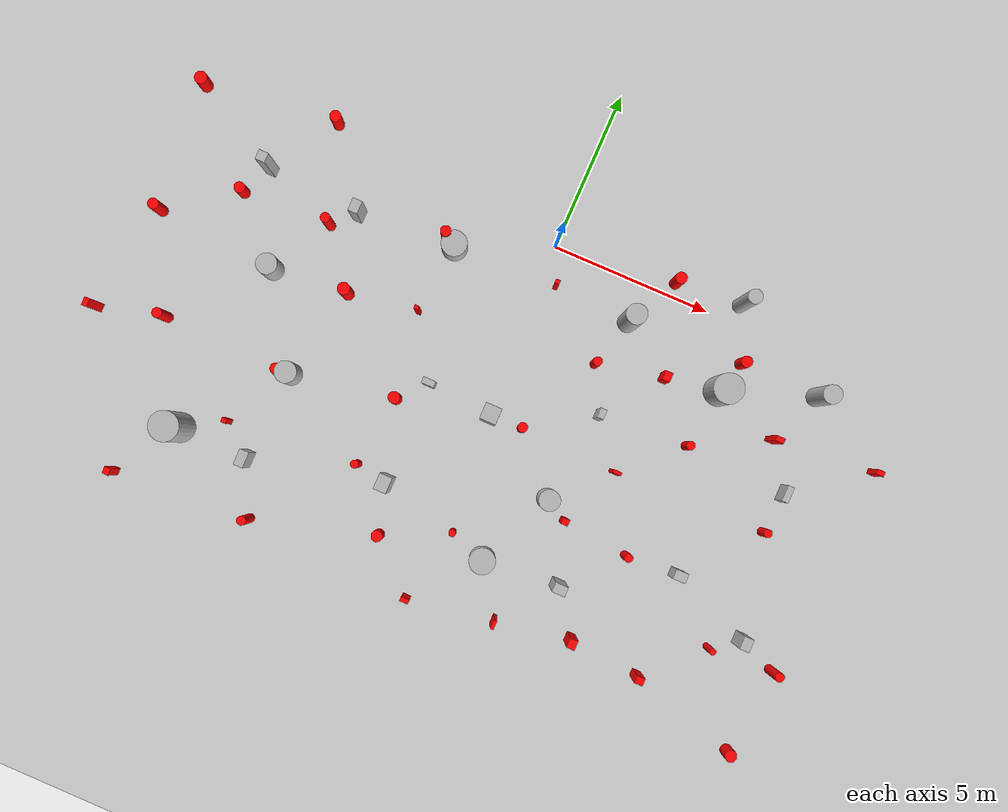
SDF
<sdf version="1.7">
 <world name="default">
  <model name="ground_plane">
   <static>1</static>
   <link name="link">
    <collision name="collision">
     <geometry><plane><normal>0 0 1</normal><size>100 100</size></plane></geometry>
     <surface>
      <contact><collide_bitmask>65535</collide_bitmask></contact>
      <friction><ode><mu>100</mu><mu2>50</mu2></ode></friction>
     </surface>
    </collision>
    <visual name="visual">
     <cast_shadows>0</cast_shadows>
     <geometry><plane><normal>0 0 1</normal><size>100 100</size></plane></geometry>
     <material>
      <script><uri>file://media/materials/scripts/gazebo.material</uri><name>Gazebo/Grey</name></script>
     </material>
    </visual>
   </link>
  </model>
  <model name="cylinder_1_0.6_0.6_2.9">
   <static>true</static>
   <pose>2.917882261333123 -1.2482557747461502 1.4636627605010293 0 0 0</pose>
   <link name="link">
    <visual name="visual">
     <geometry>
      <cylinder><radius>0.3150324556477333</radius><length>2.9273255210020586</length></cylinder>
     </geometry>
    </visual>
   </link>
  </model>
  <model name="cylinder_2_0.4_0.4_2.9">
   <static>true</static>
   <pose>5.834500761653292 0.5778983950580887 1.425596638292661 0 0 0</pose>
   <link name="link">
    <visual name="visual">
     <geometry>
      <cylinder><radius>0.2213108174593661</radius><length>2.851193276585322</length></cylinder>
     </geometry>
    </visual>
   </link>
  </model>
  <model name="cylinder_3_0.9_0.9_2.6">
   <static>true</static>
   <pose>-8.257414005969185 -9.595632051193485 1.2781567509498504 0 0 0</pose>
   <link name="link">
    <visual name="visual">
     <geometry>
      <cylinder><radius>0.46100364447404574</radius><length>2.5563135018997007</length></cylinder>
     </geometry>
    </visual>
   </link>
  </model>
  <model name="cylinder_5_0.6_0.6_2.0">
   <static>true</static>
   <pose>2.798420426550477 -7.132934251819072 1.0218483217500718 0 0 0</pose>
   <link name="link">
    <visual name="visual">
     <geometry>
      <cylinder><radius>0.3243985819971571</radius><length>2.0436966435001436</length></cylinder>
     </geometry>
    </visual>
   </link>
  </model>
  <model name="cylinder_8_0.8_0.8_1.1">
   <static>true</static>
   <pose>-2.80984198852428 -1.259360924013171 0.5602254716292698 0 0 0</pose>
   <link name="link">
    <visual name="visual">
     <geometry>
      <cylinder><radius>0.4000300146337003</radius><length>1.1204509432585397</length></cylinder>
     </geometry>
    </visual>
   </link>
  </model>
  <model name="cylinder_10_0.7_0.7_1.5">
   <static>true</static>
   <pose>-5.822464878103306 -6.773809642300074 0.7532916025397821 0 0 0</pose>
   <link name="link">
    <visual name="visual">
     <geometry>
      <cylinder><radius>0.3398932318568919</radius><length>1.5065832050795642</length></cylinder>
     </geometry>
    </visual>
   </link>
  </model>
  <model name="cylinder_13_0.6_0.6_1.6">
   <static>true</static>
   <pose>-7.596068775736622 -4.077196049557101 0.817983179393976 0 0 0</pose>
   <link name="link">
    <visual name="visual">
     <geometry><cylinder><radius>0.324278898354401</radius><length>1.635966358787952</length></cylinder></geometry>
    </visual>
   </link>
  </model>
  <model name="cylinder_16_0.8_0.8_1.0">
   <static>true</static>
   <pose>1.7302586962016626 -9.597849076250128 0.5046954761925471 0 0 0</pose>
   <link name="link">
    <visual name="visual">
     <geometry>
      <cylinder><radius>0.4033449610388691</radius><length>1.0093909523850941</length></cylinder>
     </geometry>
    </visual>
   </link>
  </model>
  <model name="cylinder_17_0.6_0.6_2.4">
   <static>true</static>
   <pose>9.054980230339702 -1.0574924276474533 1.1994792753175043 0 0 0</pose>
   <link name="link">
    <visual name="visual">
     <geometry>
      <cylinder><radius>0.2892310852565401</radius><length>2.3989585506350086</length></cylinder>
     </geometry>
    </visual>
   </link>
  </model>
  <model name="cylinder_18_0.9_0.9_2.2">
   <static>true</static>
   <pose>6.275956394049544 -2.0698851830603076 1.0812728726358587 0 0 0</pose>
   <link name="link">
    <visual name="visual">
     <geometry>
      <cylinder><radius>0.4645206085564558</radius><length>2.1625457452717174</length></cylinder>
     </geometry>
    </visual>
   </link>
  </model>
  <model name="box_0_0.2_0.3_1.9">
   <static>true</static>
   <pose>3.2034707498537003 -4.198447855791119 0.9287687009457661 0 0 0</pose>
   <link name="link">
    <visual name="visual"><geometry><box><size>0.2 0.3 1.9</size></box></geometry></visual>
   </link>
  </model>
  <model name="box_3_0.4_0.5_1.9">
   <static>true</static>
   <pose>-1.8563340554800067 -8.61666009089724 0.9535426826780689 0 0 0</pose>
   <link name="link">
    <visual name="visual"><geometry><box><size>0.4 0.5 1.9</size></box></geometry></visual>
   </link>
  </model>
  <model name="box_4_0.3_0.5_1.4">
   <static>true</static>
   <pose>-6.000069502071998 -9.62956411078772 0.7239246880603801 0 0 0</pose>
   <link name="link">
    <visual name="visual"><geometry><box><size>0.3 0.5 1.4</size></box></geometry></visual>
   </link>
  </model>
  <model name="box_5_0.4_0.3_2.2">
   <static>true</static>
   <pose>4.088288038470655 -9.363221409373843 1.1214784014997634 0 0 0</pose>
   <link name="link">
    <visual name="visual"><geometry><box><size>0.4 0.3 2.2</size></box></geometry></visual>
   </link>
  </model>
  <model name="box_7_0.3_0.3_2.4">
   <static>true</static>
   <pose>-8.839416793522489 -1.3116674888375854 1.1963434888154594 0 0 0</pose>
   <link name="link">
    <visual name="visual"><geometry><box><size>0.3 0.3 2.4</size></box></geometry></visual>
   </link>
  </model>
  <model name="box_9_0.3_0.4_1.9">
   <static>true</static>
   <pose>-5.850598491177812 -1.5062906249698749 0.9635754243648107 0 0 0</pose>
   <link name="link">
    <visual name="visual"><geometry><box><size>0.3 0.4 1.9</size></box></geometry></visual>
   </link>
  </model>
  <model name="box_10_0.4_0.3_1.3">
   <static>true</static>
   <pose>7.277112118464629 -7.649362880759338 0.6320681063451533 0 0 0</pose>
   <link name="link">
    <visual name="visual"><geometry><box><size>0.4 0.3 1.3</size></box></geometry></visual>
   </link>
  </model>
  <model name="box_11_0.2_0.5_1.2">
   <static>true</static>
   <pose>9.23872757094458 -4.157049464149023 0.6002939422654978 0 0 0</pose>
   <link name="link">
    <visual name="visual"><geometry><box><size>0.2 0.5 1.2</size></box></geometry></visual>
   </link>
  </model>
  <model name="box_13_0.5_0.5_2.7">
   <static>true</static>
   <pose>0.22637965092912005 -5.513659420505215 1.3621915174216834 0 0 0</pose>
   <link name="link">
    <visual name="visual"><geometry><box><size>0.5 0.5 2.7</size></box></geometry></visual>
   </link>
  </model>
  <model name="box_14_0.4_0.2_1.1">
   <static>true</static>
   <pose>-1.8551765717238524 -5.355317156581146 0.5534271817868253 0 0 0</pose>
   <link name="link">
    <visual name="visual"><geometry><box><size>0.4 0.2 1.1</size></box></geometry></visual>
   </link>
  </model>
  <model name="box_19_0.3_0.4_1.6">
   <static>true</static>
   <pose>9.78819554568863 -8.693915856964395 0.7883984973314939 0 0 0</pose>
   <link name="link">
    <visual name="visual"><geometry><box><size>0.3 0.4 1.6</size></box></geometry></visual>
   </link>
  </model>
  <model name="dynamic_cylinder_3_0.3_0.3_1.1">
   <static>true</static>
   <pose>9.16128509601215 -5.4615145088169 0.5687412396190572 0 0 0</pose>
   <link name="link">
    <visual name="visual">
     <geometry>
      <cylinder><radius>0.13044684073773197</radius><length>1.1374824792381144</length></cylinder>
     </geometry>
     <material><ambient>1 0 0 1</ambient><diffuse>1 0 0 1</diffuse><specular>0.5 0.5 0.5 1</specular></material>
    </visual>
   </link>
   <plugin name="obstacle_motion" filename="libobstaclePathPlugin.so">
    <orientation>false</orientation>
    <loop>0</loop>
    <velocity>0.38985832973754764</velocity>
    <path>
     <waypoint>9.16128509601215 -5.4615145088169 0.5687412396190572</waypoint>
     <waypoint>-3.0168916002980133 5.970918180963196 0.5687412396190572</waypoint>
    </path>
   </plugin>
  </model>
  <model name="dynamic_cylinder_5_0.3_0.3_1.5">
   <static>true</static>
   <pose>2.498827296501169 -2.812606580211501 0.7368921675047347 0 0 0</pose>
   <link name="link">
    <visual name="visual">
     <geometry>
      <cylinder><radius>0.14067333458357484</radius><length>1.4737843350094695</length></cylinder>
     </geometry>
     <material><ambient>1 0 0 1</ambient><diffuse>1 0 0 1</diffuse><specular>0.5 0.5 0.5 1</specular></material>
    </visual>
   </link>
   <plugin name="obstacle_motion" filename="libobstaclePathPlugin.so">
    <orientation>false</orientation>
    <loop>0</loop>
    <velocity>0.47935223164488194</velocity>
    <path>
     <waypoint>2.498827296501169 -2.812606580211501 0.7368921675047347</waypoint>
     <waypoint>11.227072123164046 1.125237640066132 0.7368921675047347</waypoint>
    </path>
   </plugin>
  </model>
  <model name="dynamic_cylinder_6_0.3_0.3_1.2">
   <static>true</static>
   <pose>1.2498786406072995 -5.480333577452499 0.6241523303919245 0 0 0</pose>
   <link name="link">
    <visual name="visual">
     <geometry>
      <cylinder><radius>0.15249704422542643</radius><length>1.248304660783849</length></cylinder>
     </geometry>
     <material><ambient>1 0 0 1</ambient><diffuse>1 0 0 1</diffuse><specular>0.5 0.5 0.5 1</specular></material>
    </visual>
   </link>
   <plugin name="obstacle_motion" filename="libobstaclePathPlugin.so">
    <orientation>false</orientation>
    <loop>0</loop>
    <velocity>0.3746069727761495</velocity>
    <path>
     <waypoint>1.2498786406072995 -5.480333577452499 0.6241523303919245</waypoint>
     <waypoint>-2.3588751508896326 -6.0380768380086955 0.6241523303919245</waypoint>
    </path>
   </plugin>
  </model>
  <model name="dynamic_cylinder_7_0.3_0.3_1.4">
   <static>true</static>
   <pose>6.014280550295702 -3.995820821009392 0.6784542050636808 0 0 0</pose>
   <link name="link">
    <visual name="visual">
     <geometry>
      <cylinder><radius>0.1348475989033497</radius><length>1.3569084101273616</length></cylinder>
     </geometry>
     <material><ambient>1 0 0 1</ambient><diffuse>1 0 0 1</diffuse><specular>0.5 0.5 0.5 1</specular></material>
    </visual>
   </link>
   <plugin name="obstacle_motion" filename="libobstaclePathPlugin.so">
    <orientation>false</orientation>
    <loop>0</loop>
    <velocity>0.3209255777484948</velocity>
    <path>
     <waypoint>6.014280550295702 -3.995820821009392 0.6784542050636808</waypoint>
     <waypoint>8.695645124061656 -10.831432896587316 0.6784542050636808</waypoint>
    </path>
   </plugin>
  </model>
  <model name="dynamic_cylinder_9_0.3_0.3_1.7">
   <static>true</static>
   <pose>-5.215208377307121 -11.274353807856418 0.8688445847068773 0 0 0</pose>
   <link name="link">
    <visual name="visual">
     <geometry>
      <cylinder><radius>0.14059423219682837</radius><length>1.7376891694137546</length></cylinder>
     </geometry>
     <material><ambient>1 0 0 1</ambient><diffuse>1 0 0 1</diffuse><specular>0.5 0.5 0.5 1</specular></material>
    </visual>
   </link>
   <plugin name="obstacle_motion" filename="libobstaclePathPlugin.so">
    <orientation>false</orientation>
    <loop>0</loop>
    <velocity>0.31789890900658</velocity>
    <path>
     <waypoint>-5.215208377307121 -11.274353807856418 0.8688445847068773</waypoint>
     <waypoint>-11.81078151579743 -3.0557023242961066 0.8688445847068773</waypoint>
    </path>
   </plugin>
  </model>
  <model name="dynamic_cylinder_10_0.3_0.3_1.5">
   <static>true</static>
   <pose>-11.416483206956213 -3.7773363758018323 0.7308560976081367 0 0 0</pose>
   <link name="link">
    <visual name="visual">
     <geometry>
      <cylinder><radius>0.16719571405958222</radius><length>1.4617121952162735</length></cylinder>
     </geometry>
     <material><ambient>1 0 0 1</ambient><diffuse>1 0 0 1</diffuse><specular>0.5 0.5 0.5 1</specular></material>
    </visual>
   </link>
   <plugin name="obstacle_motion" filename="libobstaclePathPlugin.so">
    <orientation>false</orientation>
    <loop>0</loop>
    <velocity>0.4390540011809372</velocity>
    <path>
     <waypoint>-11.416483206956213 -3.7773363758018323 0.7308560976081367</waypoint>
     <waypoint>-5.302369242513639 -6.966001208264758 0.7308560976081367</waypoint>
    </path>
   </plugin>
  </model>
  <model name="dynamic_cylinder_11_0.4_0.4_1.0">
   <static>true</static>
   <pose>10.772664497292176 -11.935122866555936 0.5067486693480159 0 0 0</pose>
   <link name="link">
    <visual name="visual">
     <geometry>
      <cylinder><radius>0.18136786497018637</radius><length>1.0134973386960318</length></cylinder>
     </geometry>
     <material><ambient>1 0 0 1</ambient><diffuse>1 0 0 1</diffuse><specular>0.5 0.5 0.5 1</specular></material>
    </visual>
   </link>
   <plugin name="obstacle_motion" filename="libobstaclePathPlugin.so">
    <orientation>false</orientation>
    <loop>0</loop>
    <velocity>0.43929648614029004</velocity>
    <path>
     <waypoint>10.772664497292176 -11.935122866555936 0.5067486693480159</waypoint>
     <waypoint>2.4094136903433494 2.1297506392869163 0.5067486693480159</waypoint>
    </path>
   </plugin>
  </model>
  <model name="dynamic_cylinder_12_0.3_0.3_1.8">
   <static>true</static>
   <pose>-6.533771963091337 -2.152762495436985 0.892232053114913 0 0 0</pose>
   <link name="link">
    <visual name="visual">
     <geometry>
      <cylinder><radius>0.15027207611453242</radius><length>1.784464106229826</length></cylinder>
     </geometry>
     <material><ambient>1 0 0 1</ambient><diffuse>1 0 0 1</diffuse><specular>0.5 0.5 0.5 1</specular></material>
    </visual>
   </link>
   <plugin name="obstacle_motion" filename="libobstaclePathPlugin.so">
    <orientation>false</orientation>
    <loop>0</loop>
    <velocity>0.4743571469510986</velocity>
    <path>
     <waypoint>-6.533771963091337 -2.152762495436985 0.892232053114913</waypoint>
     <waypoint>9.28705874921802 2.8518280377930356 0.892232053114913</waypoint>
    </path>
   </plugin>
  </model>
  <model name="dynamic_cylinder_14_0.3_0.3_1.0">
   <static>true</static>
   <pose>-1.4336699320921973 -10.16431754327315 0.524431414826715 0 0 0</pose>
   <link name="link">
    <visual name="visual">
     <geometry><cylinder><radius>0.1739883917829101</radius><length>1.04886282965343</length></cylinder></geometry>
     <material><ambient>1 0 0 1</ambient><diffuse>1 0 0 1</diffuse><specular>0.5 0.5 0.5 1</specular></material>
    </visual>
   </link>
   <plugin name="obstacle_motion" filename="libobstaclePathPlugin.so">
    <orientation>false</orientation>
    <loop>0</loop>
    <velocity>0.4815465914970079</velocity>
    <path>
     <waypoint>-1.4336699320921973 -10.16431754327315 0.524431414826715</waypoint>
     <waypoint>-6.062429867060311 -11.049227458091575 0.524431414826715</waypoint>
    </path>
   </plugin>
  </model>
  <model name="dynamic_cylinder_16_0.3_0.3_1.2">
   <static>true</static>
   <pose>-7.808198750519861 -4.128287978206088 0.6135999907048404 0 0 0</pose>
   <link name="link">
    <visual name="visual">
     <geometry>
      <cylinder><radius>0.15145127432987568</radius><length>1.2271999814096808</length></cylinder>
     </geometry>
     <material><ambient>1 0 0 1</ambient><diffuse>1 0 0 1</diffuse><specular>0.5 0.5 0.5 1</specular></material>
    </visual>
   </link>
   <plugin name="obstacle_motion" filename="libobstaclePathPlugin.so">
    <orientation>false</orientation>
    <loop>0</loop>
    <velocity>0.3476826561848116</velocity>
    <path>
     <waypoint>-7.808198750519861 -4.128287978206088 0.6135999907048404</waypoint>
     <waypoint>-10.483017159872865 2.573984976276984 0.6135999907048404</waypoint>
    </path>
   </plugin>
  </model>
  <model name="dynamic_cylinder_17_0.3_0.3_1.3">
   <static>true</static>
   <pose>-3.169738067111009 -1.0435226096962715 0.6373566915163664 0 0 0</pose>
   <link name="link">
    <visual name="visual">
     <geometry>
      <cylinder><radius>0.16591764718500285</radius><length>1.2747133830327328</length></cylinder>
     </geometry>
     <material><ambient>1 0 0 1</ambient><diffuse>1 0 0 1</diffuse><specular>0.5 0.5 0.5 1</specular></material>
    </visual>
   </link>
   <plugin name="obstacle_motion" filename="libobstaclePathPlugin.so">
    <orientation>false</orientation>
    <loop>0</loop>
    <velocity>0.41820538017409825</velocity>
    <path>
     <waypoint>-3.169738067111009 -1.0435226096962715 0.6373566915163664</waypoint>
     <waypoint>11.291848646303464 -8.797453638105504 0.6373566915163664</waypoint>
    </path>
   </plugin>
  </model>
  <model name="dynamic_cylinder_19_0.3_0.3_1.7">
   <static>true</static>
   <pose>11.00978215335823 -9.184308470764535 0.8743328320867154 0 0 0</pose>
   <link name="link">
    <visual name="visual">
     <geometry>
      <cylinder><radius>0.1399801692224526</radius><length>1.7486656641734308</length></cylinder>
     </geometry>
     <material><ambient>1 0 0 1</ambient><diffuse>1 0 0 1</diffuse><specular>0.5 0.5 0.5 1</specular></material>
    </visual>
   </link>
   <plugin name="obstacle_motion" filename="libobstaclePathPlugin.so">
    <orientation>false</orientation>
    <loop>0</loop>
    <velocity>0.4966852484521284</velocity>
    <path>
     <waypoint>11.00978215335823 -9.184308470764535 0.8743328320867154</waypoint>
     <waypoint>2.152673352325218 5.889553774735031 0.8743328320867154</waypoint>
    </path>
   </plugin>
  </model>
  <model name="dynamic_cylinder_20_0.2_0.2_1.4">
   <static>true</static>
   <pose>-2.871955595338246 -8.452591759265463 0.6991107631301368 0 0 0</pose>
   <link name="link">
    <visual name="visual">
     <geometry>
      <cylinder><radius>0.12415570400399184</radius><length>1.3982215262602735</length></cylinder>
     </geometry>
     <material><ambient>1 0 0 1</ambient><diffuse>1 0 0 1</diffuse><specular>0.5 0.5 0.5 1</specular></material>
    </visual>
   </link>
   <plugin name="obstacle_motion" filename="libobstaclePathPlugin.so">
    <orientation>false</orientation>
    <loop>0</loop>
    <velocity>0.4162163859344126</velocity>
    <path>
     <waypoint>-2.871955595338246 -8.452591759265463 0.6991107631301368</waypoint>
     <waypoint>3.7622870025800896 8.689502300428973 0.6991107631301368</waypoint>
    </path>
   </plugin>
  </model>
  <model name="dynamic_cylinder_22_0.3_0.3_1.1">
   <static>true</static>
   <pose>-9.348549336198126 -2.279145280873202 0.5439137832250003 0 0 0</pose>
   <link name="link">
    <visual name="visual">
     <geometry>
      <cylinder><radius>0.1703217496467216</radius><length>1.0878275664500006</length></cylinder>
     </geometry>
     <material><ambient>1 0 0 1</ambient><diffuse>1 0 0 1</diffuse><specular>0.5 0.5 0.5 1</specular></material>
    </visual>
   </link>
   <plugin name="obstacle_motion" filename="libobstaclePathPlugin.so">
    <orientation>false</orientation>
    <loop>0</loop>
    <velocity>0.421261626609017</velocity>
    <path>
     <waypoint>-9.348549336198126 -2.279145280873202 0.5439137832250003</waypoint>
     <waypoint>-4.294968238962794 -11.281192202286014 0.5439137832250003</waypoint>
    </path>
   </plugin>
  </model>
  <model name="dynamic_cylinder_23_0.3_0.3_1.7">
   <static>true</static>
   <pose>-9.95253784515112 -6.686485288973467 0.8425104718491128 0 0 0</pose>
   <link name="link">
    <visual name="visual">
     <geometry>
      <cylinder><radius>0.15596824058234482</radius><length>1.6850209436982255</length></cylinder>
     </geometry>
     <material><ambient>1 0 0 1</ambient><diffuse>1 0 0 1</diffuse><specular>0.5 0.5 0.5 1</specular></material>
    </visual>
   </link>
   <plugin name="obstacle_motion" filename="libobstaclePathPlugin.so">
    <orientation>false</orientation>
    <loop>0</loop>
    <velocity>0.3324240521417666</velocity>
    <path>
     <waypoint>-9.95253784515112 -6.686485288973467 0.8425104718491128</waypoint>
     <waypoint>-5.639047239252431 -10.412412909193087 0.8425104718491128</waypoint>
    </path>
   </plugin>
  </model>
  <model name="dynamic_cylinder_24_0.4_0.4_1.3">
   <static>true</static>
   <pose>6.562933066776733 -1.0461704318624 0.6397761168194139 0 0 0</pose>
   <link name="link">
    <visual name="visual">
     <geometry>
      <cylinder><radius>0.17510216488563984</radius><length>1.2795522336388279</length></cylinder>
     </geometry>
     <material><ambient>1 0 0 1</ambient><diffuse>1 0 0 1</diffuse><specular>0.5 0.5 0.5 1</specular></material>
    </visual>
   </link>
   <plugin name="obstacle_motion" filename="libobstaclePathPlugin.so">
    <orientation>false</orientation>
    <loop>0</loop>
    <velocity>0.45629592004693226</velocity>
    <path>
     <waypoint>6.562933066776733 -1.0461704318624 0.6397761168194139</waypoint>
     <waypoint>-7.209692589117256 -1.6083790492516634 0.6397761168194139</waypoint>
    </path>
   </plugin>
  </model>
  <model name="dynamic_cylinder_25_0.2_0.2_1.1">
   <static>true</static>
   <pose>0.5851154658532796 -9.182872939906627 0.5714319872230625 0 0 0</pose>
   <link name="link">
    <visual name="visual">
     <geometry>
      <cylinder><radius>0.10813695988533054</radius><length>1.142863974446125</length></cylinder>
     </geometry>
     <material><ambient>1 0 0 1</ambient><diffuse>1 0 0 1</diffuse><specular>0.5 0.5 0.5 1</specular></material>
    </visual>
   </link>
   <plugin name="obstacle_motion" filename="libobstaclePathPlugin.so">
    <orientation>false</orientation>
    <loop>0</loop>
    <velocity>0.42257335062339846</velocity>
    <path>
     <waypoint>0.5851154658532796 -9.182872939906627 0.5714319872230625</waypoint>
     <waypoint>-10.87664748690747 11.297554626495188 0.5714319872230625</waypoint>
    </path>
   </plugin>
  </model>
  <model name="dynamic_cylinder_27_0.4_0.4_1.4">
   <static>true</static>
   <pose>-6.122652493917614 -6.805025737338965 0.6975831335948894 0 0 0</pose>
   <link name="link">
    <visual name="visual">
     <geometry>
      <cylinder><radius>0.18442349615530243</radius><length>1.3951662671897789</length></cylinder>
     </geometry>
     <material><ambient>1 0 0 1</ambient><diffuse>1 0 0 1</diffuse><specular>0.5 0.5 0.5 1</specular></material>
    </visual>
   </link>
   <plugin name="obstacle_motion" filename="libobstaclePathPlugin.so">
    <orientation>false</orientation>
    <loop>0</loop>
    <velocity>0.4556343190900508</velocity>
    <path>
     <waypoint>-6.122652493917614 -6.805025737338965 0.6975831335948894</waypoint>
     <waypoint>10.146158645408768 -4.942160102804014 0.6975831335948894</waypoint>
    </path>
   </plugin>
  </model>
  <model name="dynamic_cylinder_28_0.4_0.4_1.3">
   <static>true</static>
   <pose>-2.596873474448021 -6.187713740973949 0.663321163335898 0 0 0</pose>
   <link name="link">
    <visual name="visual">
     <geometry>
      <cylinder><radius>0.18093649714891985</radius><length>1.326642326671796</length></cylinder>
     </geometry>
     <material><ambient>1 0 0 1</ambient><diffuse>1 0 0 1</diffuse><specular>0.5 0.5 0.5 1</specular></material>
    </visual>
   </link>
   <plugin name="obstacle_motion" filename="libobstaclePathPlugin.so">
    <orientation>false</orientation>
    <loop>0</loop>
    <velocity>0.37548131451777744</velocity>
    <path>
     <waypoint>-2.596873474448021 -6.187713740973949 0.663321163335898</waypoint>
     <waypoint>-0.3985551551425921 -11.040172754382793 0.663321163335898</waypoint>
    </path>
   </plugin>
  </model>
  <model name="dynamic_cylinder_29_0.2_0.2_1.4">
   <static>true</static>
   <pose>8.985598009796217 -9.30174438690453 0.7107629796208721 0 0 0</pose>
   <link name="link">
    <visual name="visual">
     <geometry>
      <cylinder><radius>0.10005459648969957</radius><length>1.4215259592417442</length></cylinder>
     </geometry>
     <material><ambient>1 0 0 1</ambient><diffuse>1 0 0 1</diffuse><specular>0.5 0.5 0.5 1</specular></material>
    </visual>
   </link>
   <plugin name="obstacle_motion" filename="libobstaclePathPlugin.so">
    <orientation>false</orientation>
    <loop>0</loop>
    <velocity>0.3975352647076415</velocity>
    <path>
     <waypoint>8.985598009796217 -9.30174438690453 0.7107629796208721</waypoint>
     <waypoint>-7.607200990081893 -2.3273759422970723 0.7107629796208721</waypoint>
    </path>
   </plugin>
  </model>
  <model name="dynamic_cylinder_30_0.4_0.4_1.7">
   <static>true</static>
   <pose>-5.2119155477740104 -3.84885494001122 0.8494227309163086 0 0 0</pose>
   <link name="link">
    <visual name="visual">
     <geometry>
      <cylinder><radius>0.18989610922270317</radius><length>1.6988454618326172</length></cylinder>
     </geometry>
     <material><ambient>1 0 0 1</ambient><diffuse>1 0 0 1</diffuse><specular>0.5 0.5 0.5 1</specular></material>
    </visual>
   </link>
   <plugin name="obstacle_motion" filename="libobstaclePathPlugin.so">
    <orientation>false</orientation>
    <loop>0</loop>
    <velocity>0.3983784463416689</velocity>
    <path>
     <waypoint>-5.2119155477740104 -3.84885494001122 0.8494227309163086</waypoint>
     <waypoint>11.116735086249122 -8.452767982430629 0.8494227309163086</waypoint>
    </path>
   </plugin>
  </model>
  <model name="dynamic_cylinder_31_0.3_0.3_1.3">
   <static>true</static>
   <pose>-7.54757045944377 0.7840460993126577 0.6429387518711818 0 0 0</pose>
   <link name="link">
    <visual name="visual">
     <geometry>
      <cylinder><radius>0.1731744185432893</radius><length>1.2858775037423635</length></cylinder>
     </geometry>
     <material><ambient>1 0 0 1</ambient><diffuse>1 0 0 1</diffuse><specular>0.5 0.5 0.5 1</specular></material>
    </visual>
   </link>
   <plugin name="obstacle_motion" filename="libobstaclePathPlugin.so">
    <orientation>false</orientation>
    <loop>0</loop>
    <velocity>0.48299415406312374</velocity>
    <path>
     <waypoint>-7.54757045944377 0.7840460993126577 0.6429387518711818</waypoint>
     <waypoint>-4.402978562580575 -1.2749528652912208 0.6429387518711818</waypoint>
    </path>
   </plugin>
  </model>
  <model name="dynamic_cylinder_32_0.4_0.4_1.6">
   <static>true</static>
   <pose>3.7756539988114035 0.41582600438592365 0.7902294136405958 0 0 0</pose>
   <link name="link">
    <visual name="visual">
     <geometry>
      <cylinder><radius>0.17731100525054194</radius><length>1.5804588272811917</length></cylinder>
     </geometry>
     <material><ambient>1 0 0 1</ambient><diffuse>1 0 0 1</diffuse><specular>0.5 0.5 0.5 1</specular></material>
    </visual>
   </link>
   <plugin name="obstacle_motion" filename="libobstaclePathPlugin.so">
    <orientation>false</orientation>
    <loop>0</loop>
    <velocity>0.30771144921179966</velocity>
    <path>
     <waypoint>3.7756539988114035 0.41582600438592365 0.7902294136405958</waypoint>
     <waypoint>9.627892095579877 1.3114814068862302 0.7902294136405958</waypoint>
    </path>
   </plugin>
  </model>
  <model name="dynamic_cylinder_34_0.3_0.3_1.4">
   <static>true</static>
   <pose>5.635530591133467 -7.764014666662557 0.7139632793532805 0 0 0</pose>
   <link name="link">
    <visual name="visual">
     <geometry>
      <cylinder><radius>0.13041735573892466</radius><length>1.427926558706561</length></cylinder>
     </geometry>
     <material><ambient>1 0 0 1</ambient><diffuse>1 0 0 1</diffuse><specular>0.5 0.5 0.5 1</specular></material>
    </visual>
   </link>
   <plugin name="obstacle_motion" filename="libobstaclePathPlugin.so">
    <orientation>false</orientation>
    <loop>0</loop>
    <velocity>0.3580496085119857</velocity>
    <path>
     <waypoint>5.635530591133467 -7.764014666662557 0.7139632793532805</waypoint>
     <waypoint>0.15149337656132644 11.995405874807169 0.7139632793532805</waypoint>
    </path>
   </plugin>
  </model>
  <model name="dynamic_cylinder_39_0.4_0.4_1.1">
   <static>true</static>
   <pose>-11.727476915707378 0.2693229017684793 0.5608108908838279 0 0 0</pose>
   <link name="link">
    <visual name="visual">
     <geometry>
      <cylinder><radius>0.19416677953897565</radius><length>1.1216217817676557</length></cylinder>
     </geometry>
     <material><ambient>1 0 0 1</ambient><diffuse>1 0 0 1</diffuse><specular>0.5 0.5 0.5 1</specular></material>
    </visual>
   </link>
   <plugin name="obstacle_motion" filename="libobstaclePathPlugin.so">
    <orientation>false</orientation>
    <loop>0</loop>
    <velocity>0.3001328437180409</velocity>
    <path>
     <waypoint>-11.727476915707378 0.2693229017684793 0.5608108908838279</waypoint>
     <waypoint>-10.774188475937837 11.17239933929936 0.5608108908838279</waypoint>
    </path>
   </plugin>
  </model>
  <model name="dynamic_box_1_0.2_0.3_1.8">
   <static>true</static>
   <pose>-11.95044874621388 -7.226127967995369 0.9747410708006319 0 0 0</pose>
   <link name="link">
    <visual name="visual">
     <geometry><box><size>0.16593023151628253 0.25835228423607415 1.7582575096892716</size></box></geometry>
     <material><ambient>1 0 0 1</ambient><diffuse>1 0 0 1</diffuse><specular>0.5 0.5 0.5 1</specular></material>
    </visual>
   </link>
   <plugin name="obstacle_motion" filename="libobstaclePathPlugin.so">
    <orientation>false</orientation>
    <loop>0</loop>
    <velocity>0.4457117459898974</velocity>
    <path>
     <waypoint>-11.95044874621388 -7.226127967995369 0.9747410708006319</waypoint>
     <waypoint>-4.069426257531747 3.321362538646765 0.9072147043078601</waypoint>
    </path>
   </plugin>
  </model>
  <model name="dynamic_box_2_0.2_0.2_1.2">
   <static>true</static>
   <pose>-9.514116877239069 -11.565687403164596 0.6787199957223198 0 0 0</pose>
   <link name="link">
    <visual name="visual">
     <geometry><box><size>0.19725441726586296 0.21763029208705986 1.239322915635053</size></box></geometry>
     <material><ambient>1 0 0 1</ambient><diffuse>1 0 0 1</diffuse><specular>0.5 0.5 0.5 1</specular></material>
    </visual>
   </link>
   <plugin name="obstacle_motion" filename="libobstaclePathPlugin.so">
    <orientation>false</orientation>
    <loop>0</loop>
    <velocity>0.37768082343382103</velocity>
    <path>
     <waypoint>-9.514116877239069 -11.565687403164596 0.6787199957223198</waypoint>
     <waypoint>-1.547243027257597 7.168541973213664 0.7120070116379371</waypoint>
    </path>
   </plugin>
  </model>
  <model name="dynamic_box_6_0.3_0.2_1.8">
   <static>true</static>
   <pose>8.283698087897289 -2.8136587381734834 0.9009054142079997 0 0 0</pose>
   <link name="link">
    <visual name="visual">
     <geometry><box><size>0.27342290831873256 0.1588532328259378 1.7968570168081497</size></box></geometry>
     <material><ambient>1 0 0 1</ambient><diffuse>1 0 0 1</diffuse><specular>0.5 0.5 0.5 1</specular></material>
    </visual>
   </link>
   <plugin name="obstacle_motion" filename="libobstaclePathPlugin.so">
    <orientation>false</orientation>
    <loop>0</loop>
    <velocity>0.3200466874848246</velocity>
    <path>
     <waypoint>8.283698087897289 -2.8136587381734834 0.9009054142079997</waypoint>
     <waypoint>7.944746735889076 3.852868251468964 0.9136649567692058</waypoint>
    </path>
   </plugin>
  </model>
  <model name="dynamic_box_7_0.3_0.3_1.7">
   <static>true</static>
   <pose>5.084890821439728 -10.710394863510352 0.8928533133938285 0 0 0</pose>
   <link name="link">
    <visual name="visual">
     <geometry><box><size>0.2549495228384997 0.2988466166441524 1.7064620778553081</size></box></geometry>
     <material><ambient>1 0 0 1</ambient><diffuse>1 0 0 1</diffuse><specular>0.5 0.5 0.5 1</specular></material>
    </visual>
   </link>
   <plugin name="obstacle_motion" filename="libobstaclePathPlugin.so">
    <orientation>false</orientation>
    <loop>0</loop>
    <velocity>0.4933150213848328</velocity>
    <path>
     <waypoint>5.084890821439728 -10.710394863510352 0.8928533133938285</waypoint>
     <waypoint>-7.981540332971059 7.725693801788857 0.9232839012094404</waypoint>
    </path>
   </plugin>
  </model>
  <model name="dynamic_box_8_0.1_0.3_1.8">
   <static>true</static>
   <pose>2.754477267463173 -11.108889506605252 0.8857501630441007 0 0 0</pose>
   <link name="link">
    <visual name="visual">
     <geometry><box><size>0.10891422219753283 0.28265671927340674 1.7686500230581423</size></box></geometry>
     <material><ambient>1 0 0 1</ambient><diffuse>1 0 0 1</diffuse><specular>0.5 0.5 0.5 1</specular></material>
    </visual>
   </link>
   <plugin name="obstacle_motion" filename="libobstaclePathPlugin.so">
    <orientation>false</orientation>
    <loop>0</loop>
    <velocity>0.31302429370976365</velocity>
    <path>
     <waypoint>2.754477267463173 -11.108889506605252 0.8857501630441007</waypoint>
     <waypoint>-3.789506995109072 7.763321257620891 0.9709384821615443</waypoint>
    </path>
   </plugin>
  </model>
  <model name="dynamic_box_12_0.2_0.2_1.1">
   <static>true</static>
   <pose>-6.963348627116593 -8.82466380352649 0.5729930844787706 0 0 0</pose>
   <link name="link">
    <visual name="visual">
     <geometry><box><size>0.15975006217038817 0.1510127570633279 1.10733891046263</size></box></geometry>
     <material><ambient>1 0 0 1</ambient><diffuse>1 0 0 1</diffuse><specular>0.5 0.5 0.5 1</specular></material>
    </visual>
   </link>
   <plugin name="obstacle_motion" filename="libobstaclePathPlugin.so">
    <orientation>false</orientation>
    <loop>0</loop>
    <velocity>0.3633082241916268</velocity>
    <path>
     <waypoint>-6.963348627116593 -8.82466380352649 0.5729930844787706</waypoint>
     <waypoint>4.4512115019148055 -10.812006137734375 0.5638549167561367</waypoint>
    </path>
   </plugin>
  </model>
  <model name="dynamic_box_16_0.1_0.1_1.8">
   <static>true</static>
   <pose>-3.01406438688624 -3.508343218256618 0.9311367277305754 0 0 0</pose>
   <link name="link">
    <visual name="visual">
     <geometry><box><size>0.1387246580804993 0.1224499985174772 1.7866198920401244</size></box></geometry>
     <material><ambient>1 0 0 1</ambient><diffuse>1 0 0 1</diffuse><specular>0.5 0.5 0.5 1</specular></material>
    </visual>
   </link>
   <plugin name="obstacle_motion" filename="libobstaclePathPlugin.so">
    <orientation>false</orientation>
    <loop>0</loop>
    <velocity>0.30608530306740117</velocity>
    <path>
     <waypoint>-3.01406438688624 -3.508343218256618 0.9311367277305754</waypoint>
     <waypoint>3.788691209434276 -3.373124375480348 0.9833466911804848</waypoint>
    </path>
   </plugin>
  </model>
  <model name="dynamic_box_21_0.1_0.1_1.6">
   <static>true</static>
   <pose>0.47963975887943455 -1.1566315659724644 0.901957221952498 0 0 0</pose>
   <link name="link">
    <visual name="visual">
     <geometry><box><size>0.147194077048314 0.13061937936714457 1.6439484577273018</size></box></geometry>
     <material><ambient>1 0 0 1</ambient><diffuse>1 0 0 1</diffuse><specular>0.5 0.5 0.5 1</specular></material>
    </visual>
   </link>
   <plugin name="obstacle_motion" filename="libobstaclePathPlugin.so">
    <orientation>false</orientation>
    <loop>0</loop>
    <velocity>0.3133192664471102</velocity>
    <path>
     <waypoint>0.47963975887943455 -1.1566315659724644 0.901957221952498</waypoint>
     <waypoint>11.052537554863939 7.174875936196319 0.8297735106512334</waypoint>
    </path>
   </plugin>
  </model>
  <model name="dynamic_box_23_0.2_0.2_1.2">
   <static>true</static>
   <pose>11.492567544553346 -2.491570560112308 0.6556899061195909 0 0 0</pose>
   <link name="link">
    <visual name="visual">
     <geometry><box><size>0.2373566735286578 0.15751507657151428 1.1909910726165593</size></box></geometry>
     <material><ambient>1 0 0 1</ambient><diffuse>1 0 0 1</diffuse><specular>0.5 0.5 0.5 1</specular></material>
    </visual>
   </link>
   <plugin name="obstacle_motion" filename="libobstaclePathPlugin.so">
    <orientation>false</orientation>
    <loop>0</loop>
    <velocity>0.4887655178146297</velocity>
    <path>
     <waypoint>11.492567544553346 -2.491570560112308 0.6556899061195909</waypoint>
     <waypoint>-10.47914389082764 -2.1634212022238692 0.6677455450592719</waypoint>
    </path>
   </plugin>
  </model>
  <model name="dynamic_box_32_0.3_0.3_1.3">
   <static>true</static>
   <pose>4.575685046188443 -2.3842221194434927 0.6844583483640265 0 0 0</pose>
   <link name="link">
    <visual name="visual">
     <geometry><box><size>0.25044216509984757 0.28998285338940055 1.3108713676962684</size></box></geometry>
     <material><ambient>1 0 0 1</ambient><diffuse>1 0 0 1</diffuse><specular>0.5 0.5 0.5 1</specular></material>
    </visual>
   </link>
   <plugin name="obstacle_motion" filename="libobstaclePathPlugin.so">
    <orientation>false</orientation>
    <loop>0</loop>
    <velocity>0.3895356581919965</velocity>
    <path>
     <waypoint>4.575685046188443 -2.3842221194434927 0.6844583483640265</waypoint>
     <waypoint>11.270963250104387 -3.632802480760976 0.666220651974203</waypoint>
    </path>
   </plugin>
  </model>
  <model name="dynamic_box_34_0.2_0.2_1.3">
   <static>true</static>
   <pose>3.514533417533954 -7.53377444858155 0.6509720319909811 0 0 0</pose>
   <link name="link">
    <visual name="visual">
     <geometry><box><size>0.2265834224553159 0.19532875550856366 1.294467121776233</size></box></geometry>
     <material><ambient>1 0 0 1</ambient><diffuse>1 0 0 1</diffuse><specular>0.5 0.5 0.5 1</specular></material>
    </visual>
   </link>
   <plugin name="obstacle_motion" filename="libobstaclePathPlugin.so">
    <orientation>false</orientation>
    <loop>0</loop>
    <velocity>0.40829325112179066</velocity>
    <path>
     <waypoint>3.514533417533954 -7.53377444858155 0.6509720319909811</waypoint>
     <waypoint>1.9296304045671473 -0.8958454780892744 0.6672039537080197</waypoint>
    </path>
   </plugin>
  </model>
  <model name="dynamic_box_36_0.3_0.1_1.2">
   <static>true</static>
   <pose>0.0797351832927653 -11.544168275761951 0.7039519802399951 0 0 0</pose>
   <link name="link">
    <visual name="visual">
     <geometry><box><size>0.26606073719499895 0.13958152058286483 1.2151104400783013</size></box></geometry>
     <material><ambient>1 0 0 1</ambient><diffuse>1 0 0 1</diffuse><specular>0.5 0.5 0.5 1</specular></material>
    </visual>
   </link>
   <plugin name="obstacle_motion" filename="libobstaclePathPlugin.so">
    <orientation>false</orientation>
    <loop>0</loop>
    <velocity>0.32135351851768595</velocity>
    <path>
     <waypoint>0.0797351832927653 -11.544168275761951 0.7039519802399951</waypoint>
     <waypoint>0.45513183382970723 -10.738283659094664 0.6757606040753266</waypoint>
    </path>
   </plugin>
  </model>
  <model name="dynamic_box_38_0.3_0.2_1.6">
   <static>true</static>
   <pose>7.3399398193317325 -10.91832414262798 0.7830924295797292 0 0 0</pose>
   <link name="link">
    <visual name="visual">
     <geometry><box><size>0.26103327799125275 0.23249736012238673 1.552903108865706</size></box></geometry>
     <material><ambient>1 0 0 1</ambient><diffuse>1 0 0 1</diffuse><specular>0.5 0.5 0.5 1</specular></material>
    </visual>
   </link>
   <plugin name="obstacle_motion" filename="libobstaclePathPlugin.so">
    <orientation>false</orientation>
    <loop>0</loop>
    <velocity>0.40391728817147143</velocity>
    <path>
     <waypoint>7.3399398193317325 -10.91832414262798 0.7830924295797292</waypoint>
     <waypoint>-4.859549293095213 -10.862376608750479 0.8760228228220835</waypoint>
    </path>
   </plugin>
  </model>
  <model name="dynamic_box_39_0.3_0.1_1.6">
   <static>true</static>
   <pose>4.315121765422262 -5.5985533628157365 0.884127369878231 0 0 0</pose>
   <link name="link">
    <visual name="visual">
     <geometry><box><size>0.26733036497742124 0.10836212023066027 1.6383224879587872</size></box></geometry>
     <material><ambient>1 0 0 1</ambient><diffuse>1 0 0 1</diffuse><specular>0.5 0.5 0.5 1</specular></material>
    </visual>
   </link>
   <plugin name="obstacle_motion" filename="libobstaclePathPlugin.so">
    <orientation>false</orientation>
    <loop>0</loop>
    <velocity>0.48692152564072544</velocity>
    <path>
     <waypoint>4.315121765422262 -5.5985533628157365 0.884127369878231</waypoint>
     <waypoint>-0.6031799975293897 -2.266996689274123 0.9094413999381441</waypoint>
    </path>
   </plugin>
  </model>
 </world>
</sdf>
